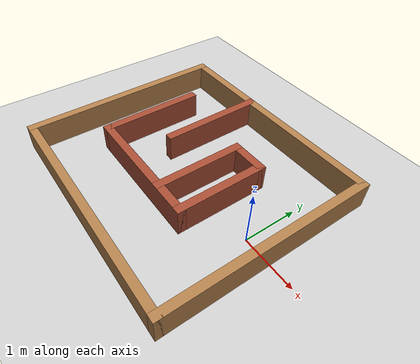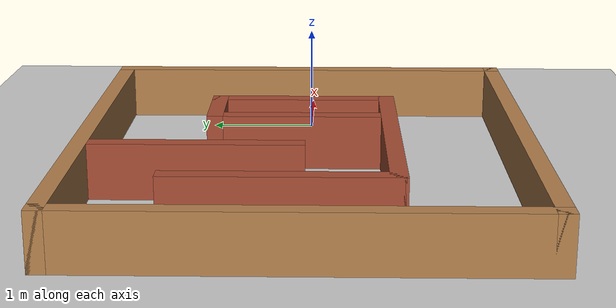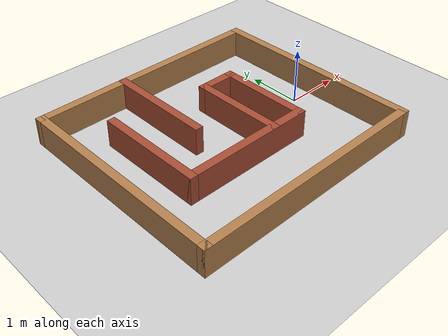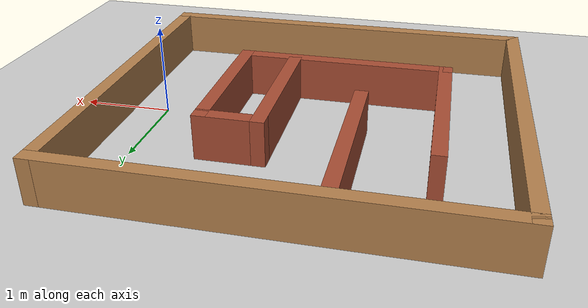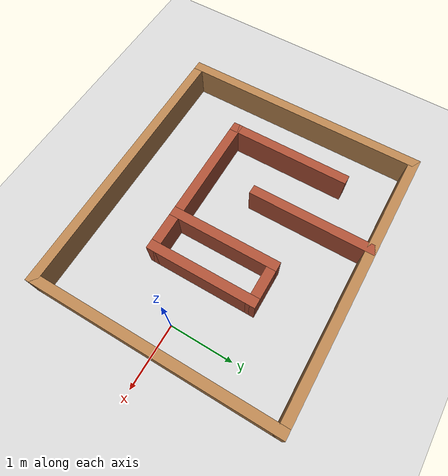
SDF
<sdf version="1.7">
 <world name="default">
  <model name="ground_plane">
   <static>1</static>
   <link name="link">
    <collision name="collision">
     <geometry><plane><normal>0 0 1</normal><size>100 100</size></plane></geometry>
     <surface>
      <contact><collide_bitmask>65535</collide_bitmask></contact>
      <friction><ode><mu>100</mu><mu2>50</mu2></ode></friction>
     </surface>
    </collision>
    <visual name="visual">
     <cast_shadows>0</cast_shadows>
     <geometry><plane><normal>0 0 1</normal><size>100 100</size></plane></geometry>
     <material>
      <script><uri>file://media/materials/scripts/gazebo.material</uri><name>Gazebo/Grey</name></script>
     </material>
    </visual>
   </link>
  </model>
  <light name="sun" type="directional">
   <pose>0 0 10 0 -0 0</pose>
   <diffuse>0.8 0.8 0.8 1</diffuse>
   <specular>0.2 0.2 0.2 1</specular>
   <attenuation>
    <range>1000</range>
    <constant>0.9</constant>
    <linear>0.01</linear>
    <quadratic>0.001</quadratic>
   </attenuation>
   <direction>-0.5 0.1 -0.9</direction>
   <spot><inner_angle>0</inner_angle><outer_angle>0</outer_angle><falloff>0</falloff></spot>
  </light>
  <scene><shadows>0</shadows><ambient>0.4 0.4 0.4 1</ambient><background>0.7 0.7 0.7 1</background></scene>
  <physics type="ode">
   <real_time_update_rate>1000</real_time_update_rate>
   <max_step_size>0.001</max_step_size>
   <real_time_factor>1</real_time_factor>
   <ode>
    <solver>
     <type>quick</type>
     <iters>150</iters>
     <precon_iters>0</precon_iters>
     <sor>1.4</sor>
     <use_dynamic_moi_rescaling>1</use_dynamic_moi_rescaling>
    </solver>
    <constraints>
     <cfm>1e-05</cfm>
     <erp>0.2</erp>
     <contact_max_correcting_vel>2000</contact_max_correcting_vel>
     <contact_surface_layer>0.01</contact_surface_layer>
    </constraints>
   </ode>
  </physics>
  <gravity>0 0 -9.8</gravity>
  <magnetic_field>6e-06 2.3e-05 -4.2e-05</magnetic_field>
  <atmosphere type="adiabatic"/>
  <audio><device>default</device></audio>
  <spherical_coordinates>
   <surface_model>EARTH_WGS84</surface_model>
   <latitude_deg>0</latitude_deg>
   <longitude_deg>0</longitude_deg>
   <elevation>0</elevation>
   <heading_deg>0</heading_deg>
  </spherical_coordinates>
  <model name="track3">
   <pose>-4.08186 0.003083 0 0 -0 1.57933</pose>
   <link name="Wall_1">
    <collision name="Wall_1_Collision">
     <geometry><box><size>4.5 0.15 0.5</size></box></geometry>
     <pose>0 0 0.25 0 -0 0</pose>
    </collision>
    <visual name="Wall_1_Visual">
     <pose>0 0 0.25 0 -0 0</pose>
     <geometry><box><size>4.5 0.15 0.5</size></box></geometry>
     <material>
      <script><uri>file://media/materials/scripts/gazebo.material</uri><name>Gazebo/Wood</name></script>
      <ambient>1 1 1 1</ambient>
     </material>
     <meta><layer>0</layer></meta>
    </visual>
    <pose>-1.925 -2.3725 0 0 -0 1.5708</pose>
   </link>
   <link name="Wall_10">
    <collision name="Wall_10_Collision">
     <geometry><box><size>2.49 0.15 0.5</size></box></geometry>
     <pose>0 0 0.25 0 -0 0</pose>
    </collision>
    <visual name="Wall_10_Visual">
     <pose>0 0 0.25 0 -0 0</pose>
     <geometry><box><size>2.49 0.15 0.5</size></box></geometry>
     <material>
      <script><uri>file://media/materials/scripts/gazebo.material</uri><name>Gazebo/Bricks</name></script>
      <ambient>1 1 1 1</ambient>
     </material>
     <meta><layer>0</layer></meta>
    </visual>
    <pose>-0.765 -2.1575 0 0 -0 -1.5708</pose>
   </link>
   <link name="Wall_11">
    <collision name="Wall_11_Collision">
     <geometry><box><size>1.75 0.15 0.5</size></box></geometry>
     <pose>0 0 0.25 0 -0 0</pose>
    </collision>
    <visual name="Wall_11_Visual">
     <pose>0 0 0.25 0 -0 0</pose>
     <geometry><box><size>1.75 0.15 0.5</size></box></geometry>
     <material>
      <script><uri>file://media/materials/scripts/gazebo.material</uri><name>Gazebo/Bricks</name></script>
      <ambient>1 1 1 1</ambient>
     </material>
     <meta><layer>0</layer></meta>
    </visual>
    <pose>0.035 -3.3275 0 0 -0 0</pose>
   </link>
   <link name="Wall_12">
    <collision name="Wall_12_Collision">
     <geometry><box><size>0.75 0.15 0.5</size></box></geometry>
     <pose>0 0 0.25 0 -0 0</pose>
    </collision>
    <visual name="Wall_12_Visual">
     <pose>0 0 0.25 0 -0 0</pose>
     <geometry><box><size>0.75 0.15 0.5</size></box></geometry>
     <material>
      <script><uri>file://media/materials/scripts/gazebo.material</uri><name>Gazebo/Bricks</name></script>
      <ambient>1 1 1 1</ambient>
     </material>
     <meta><layer>0</layer></meta>
    </visual>
    <pose>0.835 -3.0275 0 0 -0 1.5708</pose>
   </link>
   <link name="Wall_13">
    <collision name="Wall_13_Collision">
     <geometry><box><size>1.75 0.15 0.5</size></box></geometry>
     <pose>0 0 0.25 0 -0 0</pose>
    </collision>
    <visual name="Wall_13_Visual">
     <pose>0 0 0.25 0 -0 0</pose>
     <geometry><box><size>1.75 0.15 0.5</size></box></geometry>
     <material>
      <script><uri>file://media/materials/scripts/gazebo.material</uri><name>Gazebo/Bricks</name></script>
      <ambient>1 1 1 1</ambient>
     </material>
     <meta><layer>0</layer></meta>
    </visual>
    <pose>0.035 -2.7275 0 0 -0 3.14159</pose>
   </link>
   <link name="Wall_16">
    <collision name="Wall_16_Collision">
     <geometry><box><size>2 0.15 0.5</size></box></geometry>
     <pose>0 0 0.25 0 -0 0</pose>
    </collision>
    <visual name="Wall_16_Visual">
     <pose>0 0 0.25 0 -0 0</pose>
     <geometry><box><size>2 0.15 0.5</size></box></geometry>
     <material>
      <script><uri>file://media/materials/scripts/gazebo.material</uri><name>Gazebo/Bricks</name></script>
      <ambient>1 1 1 1</ambient>
     </material>
     <meta><layer>0</layer></meta>
    </visual>
    <pose>0.16 -0.9875 0 0 -0 0</pose>
   </link>
   <link name="Wall_18">
    <collision name="Wall_18_Collision">
     <geometry><box><size>2 0.15 0.5</size></box></geometry>
     <pose>0 0 0.25 0 -0 0</pose>
    </collision>
    <visual name="Wall_18_Visual">
     <pose>0 0 0.25 0 -0 0</pose>
     <geometry><box><size>2 0.15 0.5</size></box></geometry>
     <material>
      <script><uri>file://media/materials/scripts/gazebo.material</uri><name>Gazebo/Bricks</name></script>
      <ambient>1 1 1 1</ambient>
     </material>
     <meta><layer>0</layer></meta>
    </visual>
    <pose>0.99 -1.8375 0 0 -0 3.14159</pose>
   </link>
   <link name="Wall_20">
    <collision name="Wall_20_Collision">
     <geometry><box><size>4 0.15 0.5</size></box></geometry>
     <pose>0 0 0.25 0 -0 0</pose>
    </collision>
    <visual name="Wall_20_Visual">
     <pose>0 0 0.25 0 -0 0</pose>
     <geometry><box><size>4 0.15 0.5</size></box></geometry>
     <material>
      <script><uri>file://media/materials/scripts/gazebo.material</uri><name>Gazebo/Wood</name></script>
      <ambient>1 1 1 1</ambient>
     </material>
     <meta><layer>0</layer></meta>
    </visual>
    <pose>0 -4.5475 0 0 -0 0</pose>
   </link>
   <link name="Wall_4">
    <collision name="Wall_4_Collision">
     <geometry><box><size>4 0.15 0.5</size></box></geometry>
     <pose>0 0 0.25 0 -0 0</pose>
    </collision>
    <visual name="Wall_4_Visual">
     <pose>0 0 0.25 0 -0 0</pose>
     <geometry><box><size>4 0.15 0.5</size></box></geometry>
     <material>
      <script><uri>file://media/materials/scripts/gazebo.material</uri><name>Gazebo/Wood</name></script>
      <ambient>1 1 1 1</ambient>
     </material>
     <meta><layer>0</layer></meta>
    </visual>
    <pose>0 -0.1975 0 0 -0 0</pose>
   </link>
   <link name="Wall_5">
    <collision name="Wall_5_Collision">
     <geometry><box><size>4.5 0.15 0.5</size></box></geometry>
     <pose>0 0 0.25 0 -0 0</pose>
    </collision>
    <visual name="Wall_5_Visual">
     <pose>0 0 0.25 0 -0 0</pose>
     <geometry><box><size>4.5 0.15 0.5</size></box></geometry>
     <material>
      <script><uri>file://media/materials/scripts/gazebo.material</uri><name>Gazebo/Wood</name></script>
      <ambient>1 1 1 1</ambient>
     </material>
     <meta><layer>0</layer></meta>
    </visual>
    <pose>1.925 -2.3725 0 0 -0 -1.5708</pose>
   </link>
   <static>1</static>
  </model>
 </world>
</sdf>
